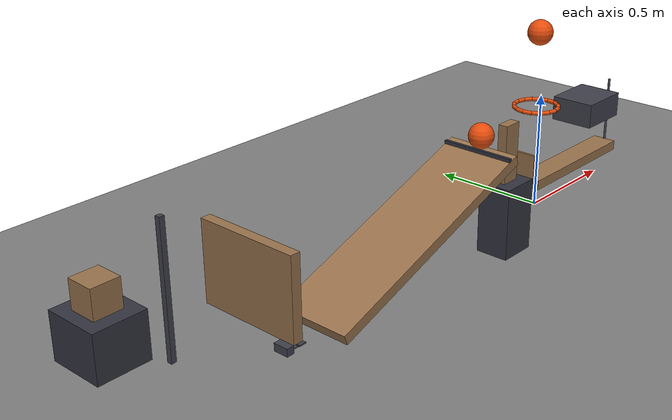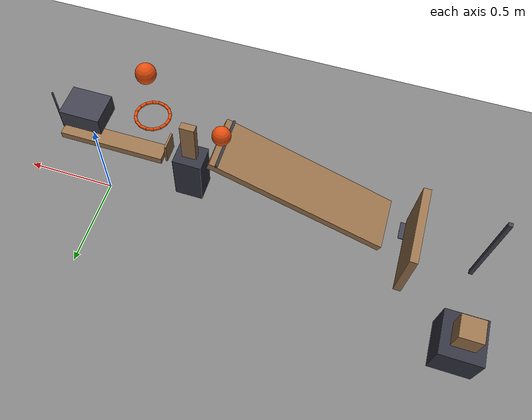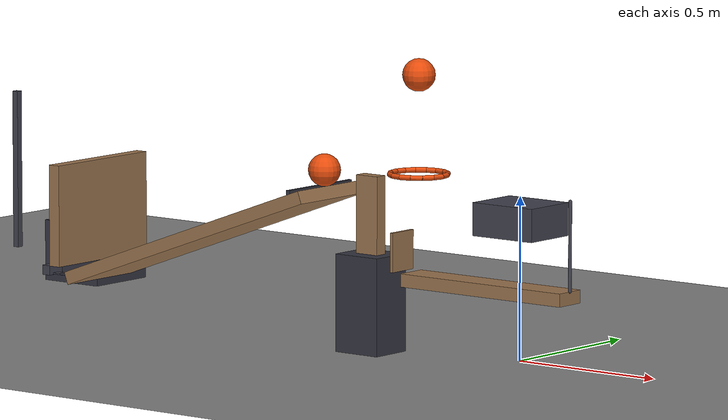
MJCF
<mujoco model="revised_chain_with_constrained_door_release">
  <compiler angle="radian"/>
  <option timestep="0.002"/>
  <worldbody>
    <geom name="floor" type="plane" size="6 6 0.1" friction="0.72 0 0"/>
    <body name="lever1" pos="0 -0.15 0.24">
      <joint name="lever_hinge" type="hinge" pos="0 0 0" axis="0 1 0" limited="true" range="-0.785398 0" damping="0.04"/>
      <geom name="lever1" type="box" pos="0 0 0" size="0.3 0.05 0.02" mass="0.485" friction="0.72 0 0" solref="0.01 0.715646" rgba="0.6 0.45 0.3 1"/>
      <geom name="lever striker" type="capsule" size="0.005" fromto="0.3 0 0.02 0.3 0 0.29" mass="0.01" friction="0.72 0 0" solref="0.01 0.715646" rgba="0.25 0.25 0.3 1"/>
      <geom name="lever retaining lip" type="box" pos="-0.335 0 0.08" size="0.005 0.05 0.06" mass="0.005" friction="0.72 0 0" solref="0.01 0.715646" rgba="0.6 0.45 0.3 1"/>
    </body>
    <body name="ring1">
      <geom name="ring1_00" type="capsule" size="0.008" fromto="-0.182 -0.15 0.56 -0.188699 -0.116324 0.56" friction="0.72 0 0" solref="0.01 0.715646" rgba="0.9 0.3 0.05 1"/>
      <geom name="ring1_01" type="capsule" size="0.008" fromto="-0.188699 -0.116324 0.56 -0.207775 -0.0877746 0.56" friction="0.72 0 0" solref="0.01 0.715646" rgba="0.9 0.3 0.05 1"/>
      <geom name="ring1_02" type="capsule" size="0.008" fromto="-0.207775 -0.0877746 0.56 -0.236324 -0.0686986 0.56" friction="0.72 0 0" solref="0.01 0.715646" rgba="0.9 0.3 0.05 1"/>
      <geom name="ring1_03" type="capsule" size="0.008" fromto="-0.236324 -0.0686986 0.56 -0.27 -0.062 0.56" friction="0.72 0 0" solref="0.01 0.715646" rgba="0.9 0.3 0.05 1"/>
      <geom name="ring1_04" type="capsule" size="0.008" fromto="-0.27 -0.062 0.56 -0.303676 -0.0686986 0.56" friction="0.72 0 0" solref="0.01 0.715646" rgba="0.9 0.3 0.05 1"/>
      <geom name="ring1_05" type="capsule" size="0.008" fromto="-0.303676 -0.0686986 0.56 -0.332225 -0.0877746 0.56" friction="0.72 0 0" solref="0.01 0.715646" rgba="0.9 0.3 0.05 1"/>
      <geom name="ring1_06" type="capsule" size="0.008" fromto="-0.332225 -0.0877746 0.56 -0.351301 -0.116324 0.56" friction="0.72 0 0" solref="0.01 0.715646" rgba="0.9 0.3 0.05 1"/>
      <geom name="ring1_07" type="capsule" size="0.008" fromto="-0.351301 -0.116324 0.56 -0.358 -0.15 0.56" friction="0.72 0 0" solref="0.01 0.715646" rgba="0.9 0.3 0.05 1"/>
      <geom name="ring1_08" type="capsule" size="0.008" fromto="-0.358 -0.15 0.56 -0.351301 -0.183676 0.56" friction="0.72 0 0" solref="0.01 0.715646" rgba="0.9 0.3 0.05 1"/>
      <geom name="ring1_09" type="capsule" size="0.008" fromto="-0.351301 -0.183676 0.56 -0.332225 -0.212225 0.56" friction="0.72 0 0" solref="0.01 0.715646" rgba="0.9 0.3 0.05 1"/>
      <geom name="ring1_10" type="capsule" size="0.008" fromto="-0.332225 -0.212225 0.56 -0.303676 -0.231301 0.56" friction="0.72 0 0" solref="0.01 0.715646" rgba="0.9 0.3 0.05 1"/>
      <geom name="ring1_11" type="capsule" size="0.008" fromto="-0.303676 -0.231301 0.56 -0.27 -0.238 0.56" friction="0.72 0 0" solref="0.01 0.715646" rgba="0.9 0.3 0.05 1"/>
      <geom name="ring1_12" type="capsule" size="0.008" fromto="-0.27 -0.238 0.56 -0.236324 -0.231301 0.56" friction="0.72 0 0" solref="0.01 0.715646" rgba="0.9 0.3 0.05 1"/>
      <geom name="ring1_13" type="capsule" size="0.008" fromto="-0.236324 -0.231301 0.56 -0.207775 -0.212225 0.56" friction="0.72 0 0" solref="0.01 0.715646" rgba="0.9 0.3 0.05 1"/>
      <geom name="ring1_14" type="capsule" size="0.008" fromto="-0.207775 -0.212225 0.56 -0.188699 -0.183676 0.56" friction="0.72 0 0" solref="0.01 0.715646" rgba="0.9 0.3 0.05 1"/>
      <geom name="ring1_15" type="capsule" size="0.008" fromto="-0.188699 -0.183676 0.56 -0.182 -0.15 0.56" friction="0.72 0 0" solref="0.01 0.715646" rgba="0.9 0.3 0.05 1"/>
    </body>
    <body name="ball1" pos="-0.27 -0.15 0.86">
      <freejoint/>
      <geom name="ball1" type="sphere" pos="0 0 0" size="0.05" mass="0.2" condim="6" friction="0.72 0 0" solref="0.01 0.715646" rgba="0.9 0.3 0.05 1"/>
    </body>
    <body name="cart1" pos="0.115 -0.15 0.46">
      <joint name="cart_track" type="slide" pos="0 0 0" axis="1 0 0" limited="true" range="-0.5 0" damping="0.2"/>
      <geom name="cart1" type="box" pos="0 0 0" size="0.11 0.09 0.05" mass="0.5" friction="0.72 0 0" solref="0.01 0.715646" rgba="0.25 0.25 0.3 1"/>
    </body>
    <body name="domino plinth">
      <geom name="domino plinth" type="box" pos="-0.455 -0.15 0.15" size="0.08 0.07 0.15" friction="0.72 0 0" solref="0.01 0.715646" rgba="0.2 0.2 0.25 1"/>
    </body>
    <body name="domino1" pos="-0.455 -0.15 0.42">
      <freejoint/>
      <geom name="domino1" type="box" pos="0 0 0" size="0.04 0.02 0.12" mass="0.25" friction="0.72 0 0" solref="0.01 0.715646" rgba="0.6 0.45 0.3 1"/>
    </body>
    <body name="ramp1">
      <geom name="ramp1" type="box" pos="-1.0809 -0.15 0.302216" size="0.5 0.15 0.02" euler="0 2.79253 0" friction="0.72 0 0" solref="0.01 0.715646" rgba="0.6 0.45 0.3 1"/>
    </body>
    <body name="ramp ball retainer">
      <geom name="ramp ball retainer" type="box" pos="-0.6555 -0.15 0.484154" size="0.006 0.15 0.007" friction="0.72 0 0" solref="0.01 0.715646" rgba="0.2 0.2 0.25 1"/>
    </body>
    <body name="ball2" pos="-0.635 -0.15 0.539005">
      <freejoint/>
      <geom name="ball2" type="sphere" pos="0 0 0" size="0.05" mass="0.2" condim="6" friction="0.72 0 0" solref="0.01 0.715646" rgba="0.9 0.3 0.05 1"/>
    </body>
    <body name="door latch" pos="-1.71259 -0.18 0.1304">
      <joint name="door_release_slide" type="slide" pos="0 0 0" axis="0 0 1" limited="true" range="-0.025 0" stiffness="20" springref="0.05" damping="0.2"/>
      <geom name="door latch" type="box" pos="0 0 0" size="0.015 0.03 0.015" mass="0.055" friction="0.72 0 0" solref="0.01 0.715646" rgba="0.25 0.25 0.3 1"/>
      <geom name="door release bridge" type="box" pos="0.0425 0 -0.0104" size="0.0325 0.015 0.002" mass="0.005" friction="0.72 0 0" solref="0.01 0.715646" rgba="0.25 0.25 0.3 1"/>
      <geom name="door release paddle" type="box" pos="0.065 0.03 -0.0079" size="0.015 0.05 0.0025" mass="0.02" friction="0.72 0 0" solref="0.01 0.715646" rgba="0.25 0.25 0.3 1"/>
    </body>
    <body name="door1" pos="-1.67759 0.21 0.305">
      <joint name="door_hinge" type="hinge" pos="0 0 0" axis="0 0 1" limited="true" range="-1.22173 0" stiffness="8" springref="-1.22173" damping="0.04"/>
      <geom name="door1" type="box" pos="0 -0.21 0" size="0.02 0.21 0.16" mass="0.45" friction="0.72 0 0" solref="0.01 0.715646" rgba="0.6 0.45 0.3 1"/>
    </body>
    <body name="pendulum1" pos="-2.01759 0 0.65">
      <joint name="pendulum_hinge" type="hinge" pos="0 0 0" axis="1 0 0" limited="true" range="0 0.663225" damping="0.04"/>
      <geom name="pendulum1" type="box" pos="0 0 -0.25" size="0.01 0.01 0.25" mass="0.35" friction="0.72 0 0" solref="0.01 0.715646" rgba="0.25 0.25 0.3 1"/>
    </body>
    <body name="block plinth">
      <geom name="block plinth" type="box" pos="-2.01759 0.3755 0.0979973" size="0.11 0.12 0.0979973" friction="0.72 0 0" solref="0.01 0.715646" rgba="0.2 0.2 0.25 1"/>
    </body>
    <body name="block1" pos="-2.01759 0.3755 0.255995">
      <freejoint/>
      <geom name="block1" type="box" pos="0 0 0" size="0.06 0.06 0.06" mass="0.35" friction="0.72 0 0" solref="0.01 0.715646" rgba="0.6 0.45 0.3 1"/>
    </body>
  </worldbody>
  <keyframe>
    <key name="start" qpos="0 -0.27 -0.15 0.86 1 0 0 0 0 -0.455 -0.15 0.42 1 0 0 0 -0.635 -0.15 0.539005 1 0 0 0 0 0 0 -2.01759 0.3755 0.255995 1 0 0 0" qvel="0 0 0 0 0 0 0 0 0 0 0 0 0 0 0 0 0 0 0 0 0 0 0 0 0 0 0 0 0"/>
  </keyframe>
</mujoco>
